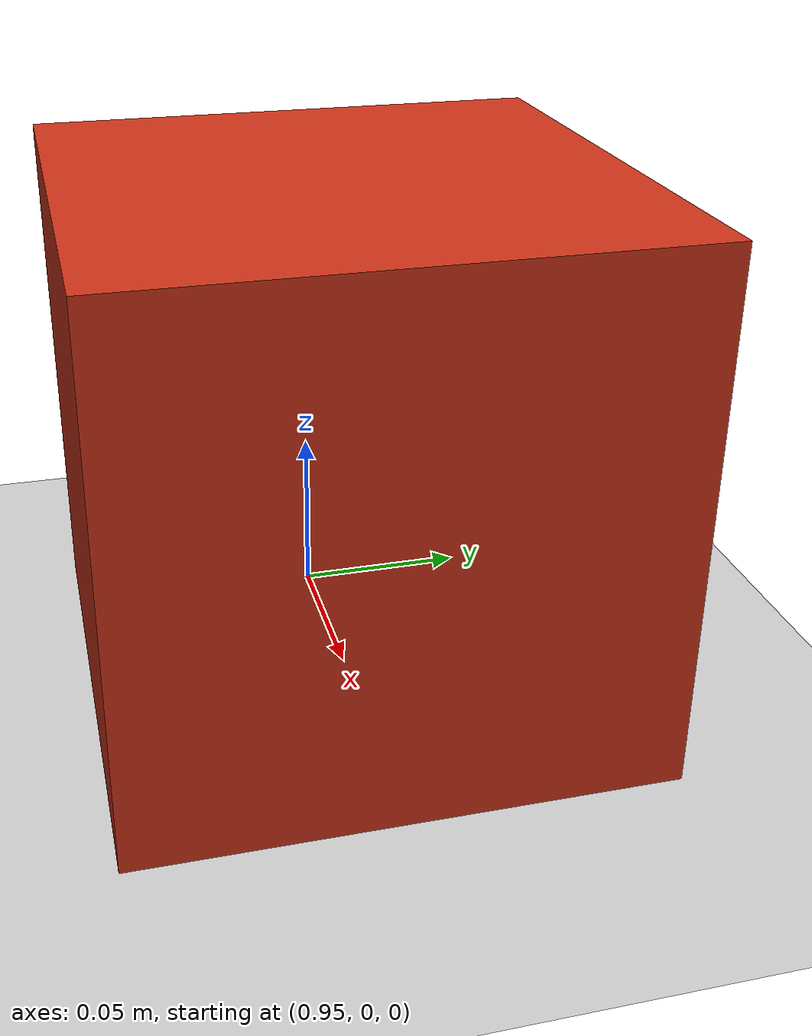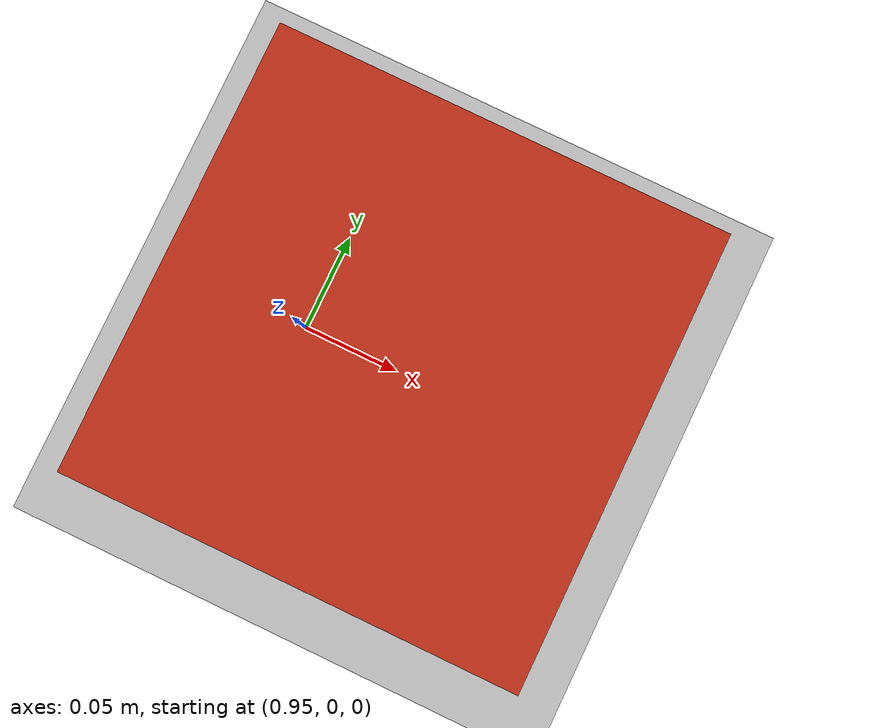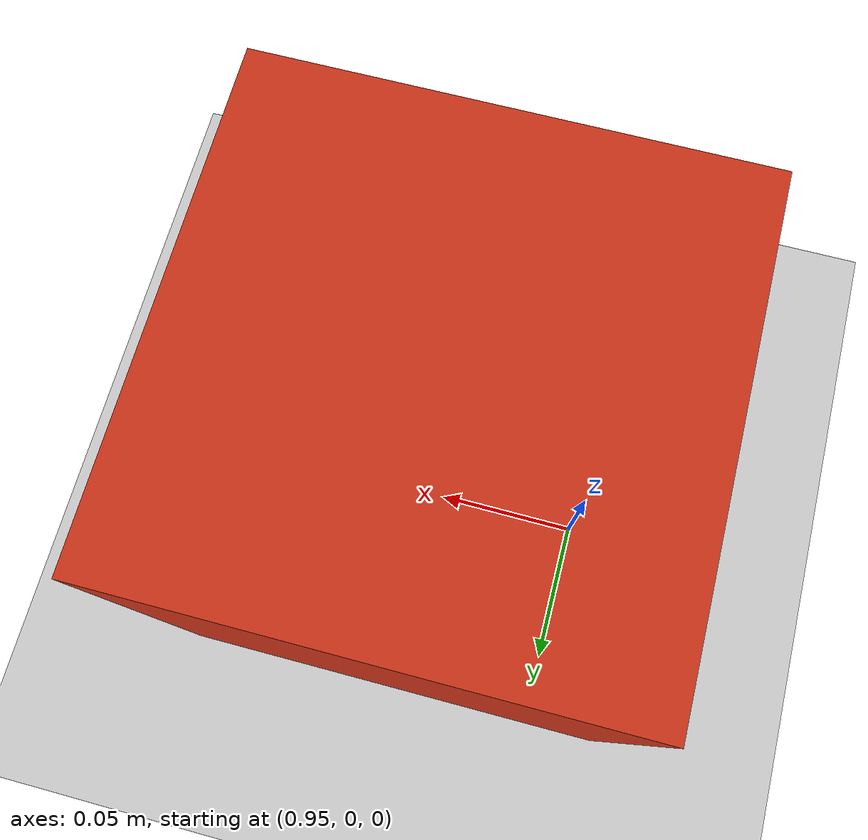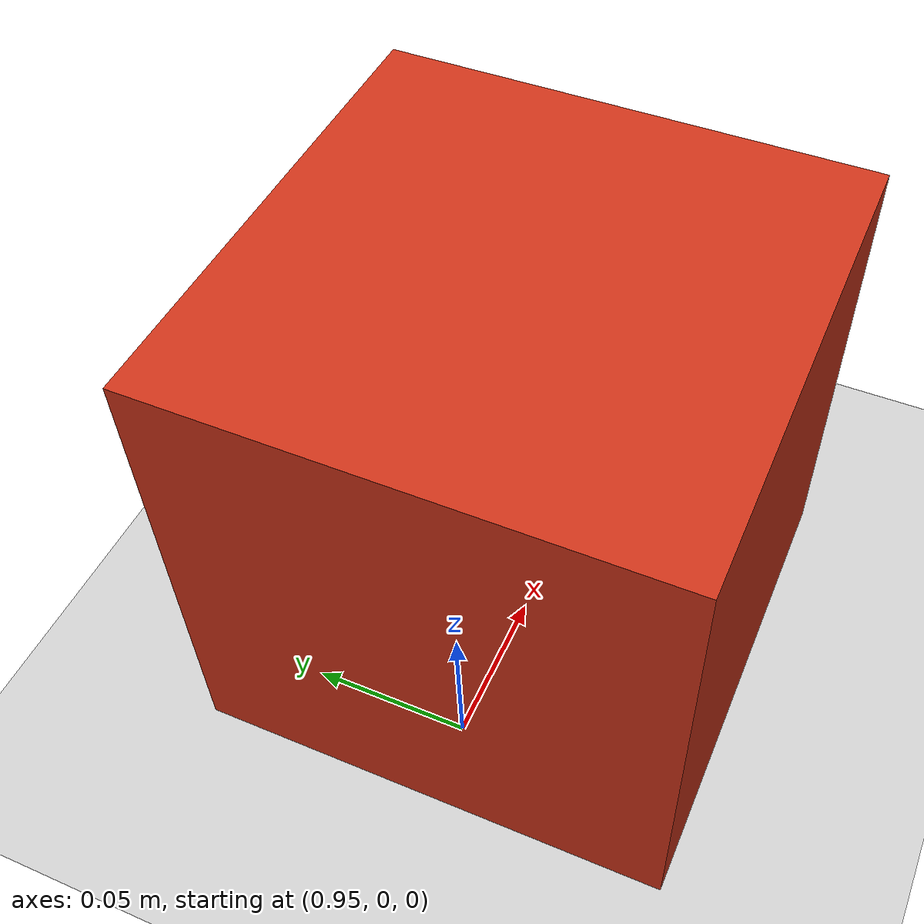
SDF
<?xml version="1.0" encoding="UTF-8"?>
<sdf version="1.9">
  <world name="gripper_test">
    <physics type="dart">
      <max_step_size>0.004</max_step_size>
      <real_time_factor>1.0</real_time_factor>
      <real_time_update_rate>250</real_time_update_rate>
    </physics>
    <gravity>0 0 -9.8</gravity>
    <magnetic_field>6e-06 2.3e-05 -4.2e-05</magnetic_field>
    <atmosphere type="adiabatic"/>
    <scene>
      <grid>false</grid>
      <ambient>0.4 0.4 0.4 1</ambient>
      <background>0.7 0.7 0.7 1</background>
      <shadows>true</shadows>
    </scene>

    <plugin filename="gz-sim-physics-system" name="gz::sim::systems::Physics"/>
    <plugin filename="gz-sim-user-commands-system" name="gz::sim::systems::UserCommands"/>
    <plugin filename="gz-sim-scene-broadcaster-system" name="gz::sim::systems::SceneBroadcaster"/>
    <plugin filename="gz-sim-contact-system" name="gz::sim::systems::Contact"/>
    <plugin filename="gz-sim-imu-system" name="gz::sim::systems::Imu"/>
    <plugin filename="gz-sim-air-pressure-system" name="gz::sim::systems::AirPressure"/>
    <plugin filename="gz-sim-air-speed-system" name="gz::sim::systems::AirSpeed"/>
    <plugin filename="gz-sim-apply-link-wrench-system" name="gz::sim::systems::ApplyLinkWrench"/>
    <plugin filename="gz-sim-navsat-system" name="gz::sim::systems::NavSat"/>
    <plugin filename="gz-sim-magnetometer-system" name="gz::sim::systems::Magnetometer"/>
    <plugin filename="gz-sim-sensors-system" name="gz::sim::systems::Sensors">
      <render_engine>ogre2</render_engine>
    </plugin>

    <!-- 夹爪插件:world 级 system。topic 名都可在这里改;不写则用默认值。 -->
    <plugin filename="magnetic_gripper"
            name="magnetic_gripper::MagneticGripper">
      <attach_topic>/gripper/attach</attach_topic>
      <detach_topic>/gripper/detach</detach_topic>
      <state_topic>/gripper/state</state_topic>
    </plugin>

    <model name="ground_plane">
      <static>true</static>
      <link name="link">
        <collision name="collision">
          <geometry>
            <plane>
              <normal>0 0 1</normal>
              <size>1 1</size>
            </plane>
          </geometry>
          <surface>
            <friction>
              <ode/>
            </friction>
            <bounce/>
            <contact/>
          </surface>
        </collision>
        <visual name="visual">
          <geometry>
            <plane>
              <normal>0 0 1</normal>
              <size>500 500</size>
            </plane>
          </geometry>
          <material>
            <ambient>0.8 0.8 0.8 1</ambient>
            <diffuse>0.8 0.8 0.8 1</diffuse>
            <specular>0.8 0.8 0.8 1</specular>
          </material>
        </visual>
        <pose>0 0 0 0 -0 0</pose>
        <inertial>
          <pose>0 0 0 0 -0 0</pose>
          <mass>1</mass>
          <inertia>
            <ixx>1</ixx><ixy>0</ixy><ixz>0</ixz>
            <iyy>1</iyy><iyz>0</iyz><izz>1</izz>
          </inertia>
        </inertial>
        <enable_wind>false</enable_wind>
      </link>
      <pose>0 0 0 0 -0 0</pose>
      <self_collide>false</self_collide>
    </model>

    <model name="box">
      <pose>1.0 0.0 0.075 0 0 0</pose>
      <link name="box_link">
        <inertial>
          <mass>0.3</mass>
          <inertia>
            <ixx>0.001125</ixx><ixy>0</ixy><ixz>0</ixz>
            <iyy>0.001125</iyy><iyz>0</iyz><izz>0.001125</izz>
          </inertia>
        </inertial>
        <visual name="visual">
          <geometry>
            <box><size>0.15 0.15 0.15</size></box>
          </geometry>
          <material>
            <ambient>0.8 0.2 0.1 1</ambient>
            <diffuse>0.8 0.2 0.1 1</diffuse>
          </material>
        </visual>
        <collision name="collision">
          <geometry>
            <box><size>0.15 0.15 0.15</size></box>
          </geometry>
        </collision>
      </link>
    </model>

    <light name="sunUTC" type="directional">
      <pose>0 0 500 0 -0 0</pose>
      <cast_shadows>true</cast_shadows>
      <intensity>1</intensity>
      <direction>0.001 0.625 -0.78</direction>
      <diffuse>0.904 0.904 0.904 1</diffuse>
      <specular>0.271 0.271 0.271 1</specular>
      <attenuation>
        <range>2000</range>
        <linear>0</linear>
        <constant>1</constant>
        <quadratic>0</quadratic>
      </attenuation>
      <spot>
        <inner_angle>0</inner_angle>
        <outer_angle>0</outer_angle>
        <falloff>0</falloff>
      </spot>
    </light>

    <spherical_coordinates>
      <surface_model>EARTH_WGS84</surface_model>
      <world_frame_orientation>ENU</world_frame_orientation>
      <latitude_deg>47.397971057728974</latitude_deg>
      <longitude_deg> 8.546163739800146</longitude_deg>
      <elevation>0</elevation>
    </spherical_coordinates>
  </world>
</sdf>
